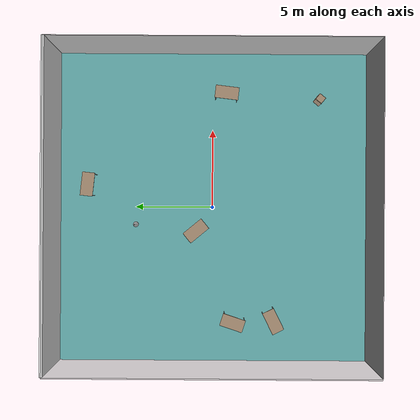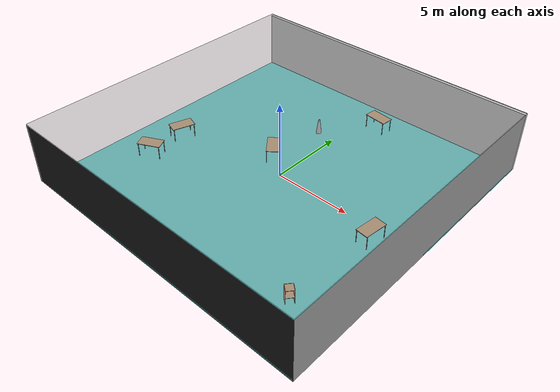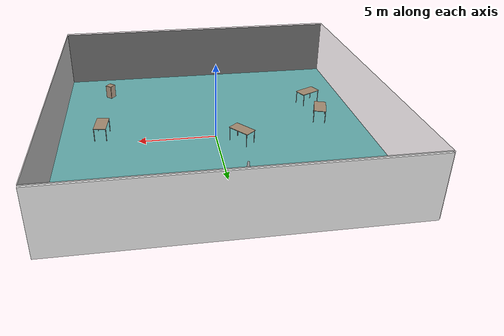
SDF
<sdf version="1.4">
 <world name="default">
  <physics type="ode">
   <max_step_size>0.001</max_step_size>
   <real_time_factor>1</real_time_factor>
   <real_time_update_rate>1000</real_time_update_rate>
   <gravity>0 0 -9.8</gravity>
  </physics>
  <scene><ambient>0.4 0.4 0.4 1</ambient><background>0.7 0.7 0.7 1</background><shadows>1</shadows></scene>
  <model name="Surrounding">
   <static>1</static>
   <link name="Ceiling">
    <collision name="Ceiling_Collision"><geometry><box><size>20 20 0.1</size></box></geometry></collision>
    <visual name="Ceiling_Visual">
     <geometry><box><size>20 20 0.1</size></box></geometry>
     <material>
      <script><uri>file://media/materials/scripts/gazebo.material</uri><name>Gazebo/GreyTransparent</name></script>
     </material>
    </visual>
    <pose>0 0 4.05 0 0 0</pose>
   </link>
   <link name="Wall_South">
    <collision name="Wall_South_Collision">
     <geometry><box><size>20 0 4</size></box></geometry>
     <pose>0 0 2 0 -0 0</pose>
    </collision>
    <visual name="Wall_South_Visual">
     <pose>0 0 2 0 -0 0</pose>
     <geometry><box><size>20 0 4</size></box></geometry>
     <material>
      <script><uri>file://media/materials/scripts/gazebo.material</uri><name>Gazebo/Black</name></script>
     </material>
    </visual>
    <velocity_decay><linear>0</linear><angular>0</angular></velocity_decay>
    <pose>0 -10 0 0 -0 0</pose>
   </link>
   <link name="Wall_East">
    <collision name="Wall_21_Collision">
     <geometry><box><size>20 0 4</size></box></geometry>
     <pose>0 0 2 0 -0 0</pose>
    </collision>
    <visual name="Wall_21_Visual">
     <pose>0 0 2 0 -0 0</pose>
     <geometry><box><size>20 0 4</size></box></geometry>
     <material>
      <script><uri>file://media/materials/scripts/gazebo.material</uri><name>Gazebo/JointAnchor</name></script>
     </material>
    </visual>
    <velocity_decay><linear>0</linear><angular>0</angular></velocity_decay>
    <pose>10 0 0 0 -0 1.5708</pose>
   </link>
   <link name="Wall_North">
    <collision name="Wall_22_Collision">
     <geometry><box><size>20 0.2 4</size></box></geometry>
     <pose>0 0 2 0 -0 0</pose>
    </collision>
    <visual name="Wall_22_Visual">
     <pose>0 0 2 0 -0 0</pose>
     <geometry><box><size>20 0.2 4</size></box></geometry>
     <material>
      <script><uri>file://media/materials/scripts/gazebo.material</uri><name>Gazebo/WhiteGlow</name></script>
     </material>
    </visual>
    <velocity_decay><linear>0</linear><angular>0</angular></velocity_decay>
    <pose>0 10 0 0 -0 0</pose>
   </link>
   <link name="Wall_West">
    <collision name="Wall_23_Collision">
     <geometry><box><size>20 0.2 4</size></box></geometry>
     <pose>0 0 2 0 -0 0</pose>
    </collision>
    <visual name="Wall_23_Visual">
     <pose>0 0 2 0 -0 0</pose>
     <geometry><box><size>20 0.2 4</size></box></geometry>
     <material>
      <script><uri>file://media/materials/scripts/gazebo.material</uri><name>Gazebo/GreyTransparent</name></script>
     </material>
    </visual>
    <velocity_decay><linear>0</linear><angular>0</angular></velocity_decay>
    <pose>-10 0 0 0 0 -1.5708</pose>
   </link>
   <link name="Ground_link">
    <collision name="collision">
     <pose>0 0 .05 0 -0 0</pose>
     <geometry><box><size>20 20 0.1</size></box></geometry>
    </collision>
    <visual name="visual">
     <pose>0 0 .05 0 -0 0</pose>
     <geometry><box><size>20 20 0.1</size></box></geometry>
     <material>
      <script>
       <uri>file://media/materials/scripts/gazebo.material</uri>
       <name>Gazebo/TurquoiseGlowOutline</name>
      </script>
     </material>
    </visual>
   </link>
   <static>1</static>
  </model>
  <spherical_coordinates>
   <surface_model>EARTH_WGS84</surface_model>
   <latitude_deg>0</latitude_deg>
   <longitude_deg>0</longitude_deg>
   <elevation>0</elevation>
   <heading_deg>0</heading_deg>
  </spherical_coordinates>
  <light name="lightball_0" type="diffuse">
   <diffuse>0.8 0.8 0.8 1</diffuse>
   <specular>0.2 0.2 0.2 1</specular>
   <attenuation>
    <range>100</range>
    <constant>0.7</constant>
    <linear>0.01</linear>
    <quadratic>0.001</quadratic>
   </attenuation>
   <direction>-0.5 0.1 -0.9</direction>
   <pose>8.9866275129 -6.91460773505 3.27862312606 0 0 0</pose>
  </light>
  <include><uri>model://table</uri><pose>-7.27903099282 -3.89712345795 0 0 0 0.464180901614</pose></include>
  <include><uri>model://table</uri><pose>-7.38185473321 -1.30976503643 0 0 0 1.25253596975</pose></include>
  <include><uri>model://table</uri><pose>-1.52525189456 1.05067271949 0 0 0 2.26060058609</pose></include>
  <include>
   <uri>model://construction_cone</uri>
   <pose>-1.14717224651 4.99345950288 0 0 0 2.52288686793</pose>
  </include>
  <include><uri>model://table</uri><pose>1.43090700402 7.98086795192 0 0 0 3.03378597877</pose></include>
  <include><uri>model://cabinet</uri><pose>6.95503895363 -6.86453425465 0 0 0 2.46028524631</pose></include>
  <include><uri>model://table</uri><pose>7.31237458481 -0.883096178093 0 0 0 1.45301541903</pose></include>
 </world>
</sdf>

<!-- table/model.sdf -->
<sdf version="1.5">
  <model name="table">
    <static>true</static>
    <link name="link">
      <collision name="surface">
        <pose>0 0 1.0 0 0 0</pose>
        <geometry>
          <box>
            <size>1.5 0.8 0.03</size>
          </box>
        </geometry>
        <surface>
          <friction>
            <ode>
              <mu>0.6</mu>
              <mu2>0.6</mu2>
            </ode>
          </friction>
        </surface>
      </collision>
      <visual name="visual1">
        <pose>0 0 1.0 0 0 0</pose>
        <geometry>
          <box>
            <size>1.5 0.8 0.03</size>
          </box>
        </geometry>
        <material>
          <script>
            <uri>model://media/materials/scripts/gazebo.material</uri>
            <name>Gazebo/Wood</name>
          </script>
        </material>
      </visual>
      <collision name="front_left_leg">
        <pose>0.68 0.38 0.5 0 0 0</pose>
        <geometry>
          <cylinder>
            <radius>0.02</radius>
            <length>1.0</length>
          </cylinder>
        </geometry>
      </collision>
      <visual name="front_left_leg">
        <pose>0.68 0.38 0.5 0 0 0</pose>
        <geometry>
          <cylinder>
            <radius>0.02</radius>
            <length>1.0</length>
          </cylinder>
        </geometry>
        <material>
          <script>
            <uri>model://media/materials/scripts/gazebo.material</uri>
            <name>Gazebo/Grey</name>
          </script>
        </material>
      </visual>
      <collision name="front_right_leg">
        <pose>0.68 -0.38 0.5 0 0 0</pose>
        <geometry>
          <cylinder>
            <radius>0.02</radius>
            <length>1.0</length>
          </cylinder>
        </geometry>
      </collision>
      <visual name="front_right_leg">
        <pose>0.68 -0.38 0.5 0 0 0</pose>
        <geometry>
          <cylinder>
            <radius>0.02</radius>
            <length>1.0</length>
          </cylinder>
        </geometry>
        <material>
          <script>
            <uri>model://media/materials/scripts/gazebo.material</uri>
            <name>Gazebo/Grey</name>
          </script>
        </material>
      </visual>
      <collision name="back_right_leg">
        <pose>-0.68 -0.38 0.5 0 0 0</pose>
        <geometry>
          <cylinder>
            <radius>0.02</radius>
            <length>1.0</length>
          </cylinder>
        </geometry>
      </collision>
      <visual name="back_right_leg">
        <pose>-0.68 -0.38 0.5 0 0 0</pose>
        <geometry>
          <cylinder>
            <radius>0.02</radius>
            <length>1.0</length>
          </cylinder>
        </geometry>
        <material>
          <script>
            <uri>model://media/materials/scripts/gazebo.material</uri>
            <name>Gazebo/Grey</name>
          </script>
        </material>
      </visual>
      <collision name="back_left_leg">
        <pose>-0.68 0.38 0.5 0 0 0</pose>
        <geometry>
          <cylinder>
            <radius>0.02</radius>
            <length>1.0</length>
          </cylinder>
        </geometry>
      </collision>
      <visual name="back_left_leg">
        <pose>-0.68 0.38 0.5 0 0 0</pose>
        <geometry>
          <cylinder>
            <radius>0.02</radius>
            <length>1.0</length>
          </cylinder>
        </geometry>
        <material>
          <script>
            <uri>model://media/materials/scripts/gazebo.material</uri>
            <name>Gazebo/Grey</name>
          </script>
        </material>
      </visual>
    </link>
  </model>
</sdf>

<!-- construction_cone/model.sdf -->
<sdf version="1.5">
  <model name="Construction Cone">
    <link name="link">
      <collision name="collision">
        <geometry>
          <mesh>
            <scale>10 10 10</scale>
            <uri>file://isr-testbed/construction_cone/meshes/construction_cone.dae</uri>
          </mesh>
        </geometry>
      </collision>
      <visual name="visual">
        <geometry>
          <mesh>
            <scale>10 10 10</scale>
            <uri>file://isr-testbed/construction_cone/meshes/construction_cone.dae</uri>
          </mesh>
        </geometry>
      </visual>
    </link>
  </model>
</sdf>

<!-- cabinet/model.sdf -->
<sdf version="1.5">
  <model name="cabinet">
    <static>true</static>
    <link name="cabinet_bottom_plate">
      <inertial>
        <pose>0 0 -1 0 0 0</pose>
        <inertia>
          <ixx>2.050000</ixx>
          <ixy>0</ixy>
          <ixz>0</ixz>
          <iyy>2.050000</iyy>
          <iyz>0</iyz>
          <izz>2.050000</izz>
        </inertia>
        <mass>25.000000</mass>
      </inertial>
      <collision name="cabinet_bottom_plate_geom">
        <pose>0 0 0.010000 0 0 0</pose>
        <geometry>
          <box>
            <size>0.450000 0.450000 0.020000</size>
          </box>
        </geometry>
      </collision>
      <visual name="cabinet_bottom_plate_geom_visual">
        <pose>0 0 0.010000 0 0 0</pose>
        <geometry>
          <box>
            <size>0.450000 0.450000 0.020000</size>
          </box>
        </geometry>
        <material>
          <script>
            <uri>model://media/materials/scripts/gazebo.material</uri>
            <name>Gazebo/Wood</name>
          </script>
        </material>
      </visual>
      <collision name="cabinet_bottom_plate_geom_cabinet_back_plate">
        <pose>0.235000 0 0.510000 0 0 0</pose>
        <geometry>
          <box>
            <size>0.020000 0.450000 1.020000</size>
          </box>
        </geometry>
      </collision>
      <visual name="cabinet_bottom_plate_geom_cabinet_back_plate_visual">
        <pose>0.235000 0 0.510000 0 0 0</pose>
        <geometry>
          <box>
            <size>0.020000 0.450000 1.020000</size>
          </box>
        </geometry>
        <material>
          <script>
            <uri>model://media/materials/scripts/gazebo.material</uri>
            <name>Gazebo/Wood</name>
          </script>
        </material>
      </visual>
      <collision name="cabinet_bottom_plate_geom_cabinet_left_plate">
        <pose>0 0.235000 0.510000 0 0 0</pose>
        <geometry>
          <box>
            <size>0.450000 0.020000 1.020000</size>
          </box>
        </geometry>
      </collision>
      <visual name="cabinet_bottom_plate_geom_cabinet_left_plate_visual">
        <pose>0 0.235000 0.510000 0 0 0</pose>
        <geometry>
          <box>
            <size>0.450000 0.020000 1.020000</size>
          </box>
        </geometry>
        <material>
          <script>
            <uri>model://media/materials/scripts/gazebo.material</uri>
            <name>Gazebo/Wood</name>
          </script>
        </material>
      </visual>
      <collision name="cabinet_bottom_plate_geom_cabinet_middle_plate">
        <pose>0 0 0.510000 0 0 0</pose>
        <geometry>
          <box>
            <size>0.450000 0.450000 0.020000</size>
          </box>
        </geometry>
      </collision>
      <visual name="cabinet_bottom_plate_geom_cabinet_middle_plate_visual">
        <pose>0 0 0.510000 0 0 0</pose>
        <geometry>
          <box>
            <size>0.450000 0.450000 0.020000</size>
          </box>
        </geometry>
        <material>
          <script>
            <uri>model://media/materials/scripts/gazebo.material</uri>
            <name>Gazebo/Wood</name>
          </script>
        </material>
      </visual>
      <collision name="cabinet_bottom_plate_geom_cabinet_right_plate">
        <pose>0 -0.235000 0.510000 0 0 0</pose>
        <geometry>
          <box>
            <size>0.450000 0.020000 1.020000</size>
          </box>
        </geometry>
      </collision>
      <visual name="cabinet_bottom_plate_geom_cabinet_right_plate_visual">
        <pose>0 -0.235000 0.510000 0 0 0</pose>
        <geometry>
          <box>
            <size>0.450000 0.020000 1.020000</size>
          </box>
        </geometry>
        <material>
          <script>
            <uri>model://media/materials/scripts/gazebo.material</uri>
            <name>Gazebo/Wood</name>
          </script>
        </material>
      </visual>
      <collision name="cabinet_bottom_plate_geom_cabinet_top_plate">
        <pose>0 0 1.010000 0 0 0</pose>
        <geometry>
          <box>
            <size>0.450000 0.450000 0.020000</size>
          </box>
        </geometry>
      </collision>
      <visual name="cabinet_bottom_plate_geom_cabinet_top_plate_visual">
        <pose>0 0 1.010000 0 0 0</pose>
        <geometry>
          <box>
            <size>0.450000 0.450000 0.020000</size>
          </box>
        </geometry>
        <material>
          <script>
            <uri>model://media/materials/scripts/gazebo.material</uri>
            <name>Gazebo/Wood</name>
          </script>
        </material>
      </visual>
    </link>
  </model>
</sdf>
